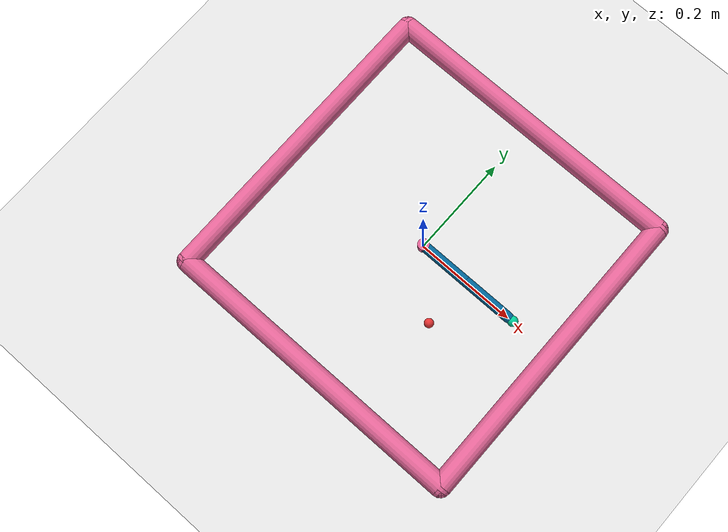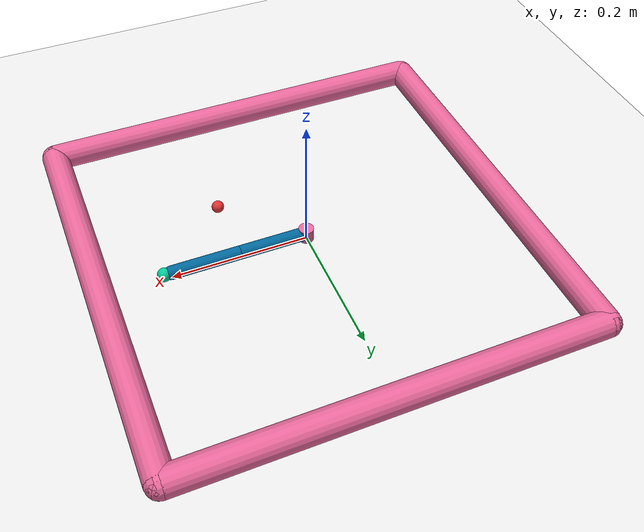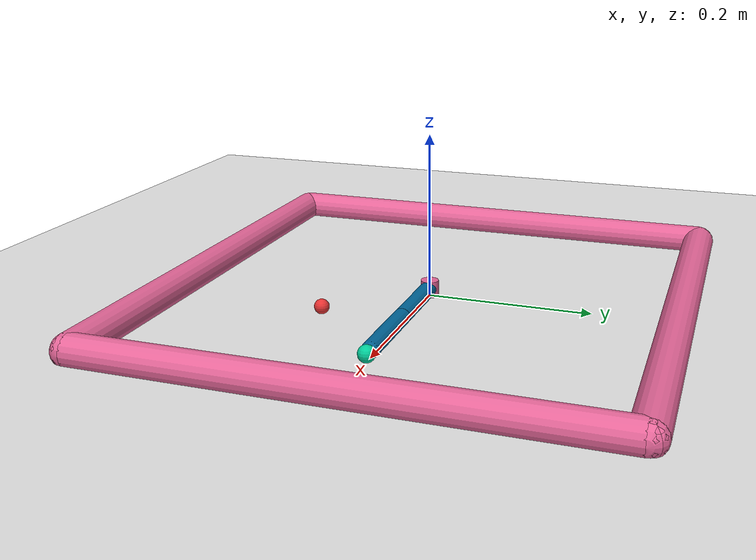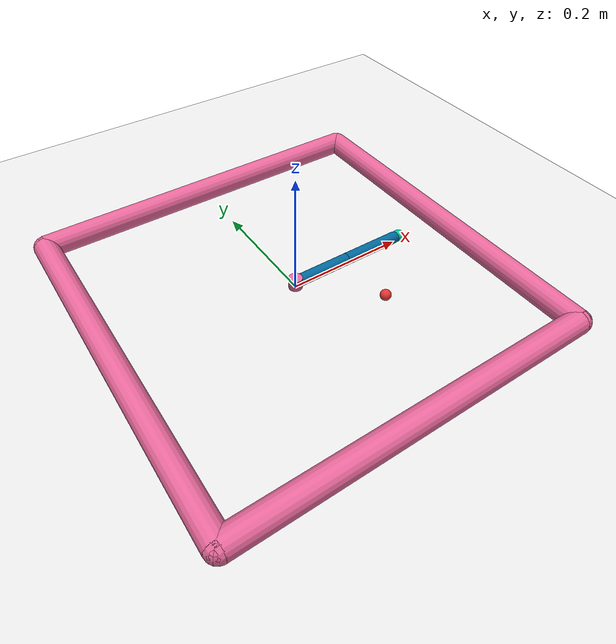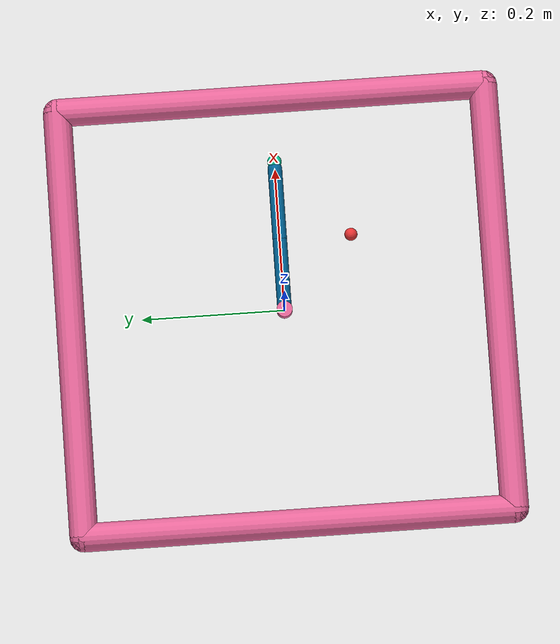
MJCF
<mujoco model="reacher">
	<compiler angle="radian" inertiafromgeom="true"/>
	<asset>
		<texture builtin="flat" name="base_tex_cube" height="32" width="32" rgb1="1 1 1" type="cube"></texture>
		<!-- builtin="flat" was a bug when including .png files below -->
		<texture name="base_tex_2d" height="32" width="32" rgb1="1 1 1" type="2d" file="dag.png"></texture>
		<texture  name="beetle_tex_2d" height="32" width="32" rgb1="1 1 1" type="2d" file="beetle.png"></texture>
		<texture  name="forest_tex_2d" height="32" width="32" rgb1="1 1 1" type="2d" file="forest.png"></texture>
		<texture  name="sep_forest_tex_2d" height="32" width="32" rgb1="1 1 1" type="2d" file="september_forest.png"></texture>
		<material name="base_mat" shininess="0.3" specular="0.75" texture="base_tex_cube"></material>
	</asset>
	<default>
		<joint armature="1" damping="1" limited="true"/>
		<geom contype="0" friction="1 0.1 0.1" rgba="0.7 0.7 0 1"/>
	</default>
	<option gravity="0 0 -9.81" integrator="RK4" timestep="0.01"/>
	<worldbody>
		<!-- Arena -->
		<geom conaffinity="0" contype="0" name="ground" pos="0 0 0" material="base_mat" rgba="0.9 0.9 0.9 1" size="1 1 10" type="plane"/>
		<geom conaffinity="0" fromto="-.3 -.3 .01 .3 -.3 .01" name="sideS" rgba="0.9 0.4 0.6 1" size=".02" type="capsule"/>
		<geom conaffinity="0" fromto=" .3 -.3 .01 .3  .3 .01" name="sideE" rgba="0.9 0.4 0.6 1" size=".02" type="capsule"/>
		<geom conaffinity="0" fromto="-.3  .3 .01 .3  .3 .01" name="sideN" rgba="0.9 0.4 0.6 1" size=".02" type="capsule"/>
		<geom conaffinity="0" fromto="-.3 -.3 .01 -.3 .3 .01" name="sideW" rgba="0.9 0.4 0.6 1" size=".02" type="capsule"/>
		<!-- Arm -->
		<geom conaffinity="0" contype="0" fromto="0 0 0 0 0 0.02" name="root" rgba="0.9 0.4 0.6 1" size=".011" type="cylinder"/>
		<body name="body0" pos="0 0 .01">
			<geom fromto="0 0 0 0.1 0 0" name="link0" rgba="0.0 0.4 0.6 1" size=".01" type="capsule"/>
			<joint axis="0 0 1" limited="false" name="joint0" pos="0 0 0" type="hinge"/>
			<body name="body1" pos="0.1 0 0">
				<joint axis="0 0 1" limited="true" name="joint1" pos="0 0 0" range="-3.0 3.0" type="hinge"/>
				<geom fromto="0 0 0 0.1 0 0" name="link1" rgba="0.0 0.4 0.6 1" size=".01" type="capsule"/>
				<body name="fingertip" pos="0.11 0 0">
					<geom contype="0" name="fingertip" pos="0 0 0" rgba="0.0 0.8 0.6 1" size=".01" type="sphere"/>
				</body>
			</body>
		</body>
		<!-- Target -->
		<body name="target" pos=".1 -.1 .01">
			<joint armature="0" axis="1 0 0" damping="0" limited="true" name="target_x" pos="0 0 0" range="-.27 .27" ref=".1" stiffness="0" type="slide"/>
			<joint armature="0" axis="0 1 0" damping="0" limited="true" name="target_y" pos="0 0 0" range="-.27 .27" ref="-.1" stiffness="0" type="slide"/>
			<geom conaffinity="0" contype="0" name="target" pos="0 0 0" rgba="0.9 0.2 0.2 1" size=".009" type="sphere"/>
		</body>
	</worldbody>
	<actuator>
		<motor ctrllimited="true" ctrlrange="-1.0 1.0" gear="200.0" joint="joint0"/>
		<motor ctrllimited="true" ctrlrange="-1.0 1.0" gear="200.0" joint="joint1"/>
	</actuator>
</mujoco>
